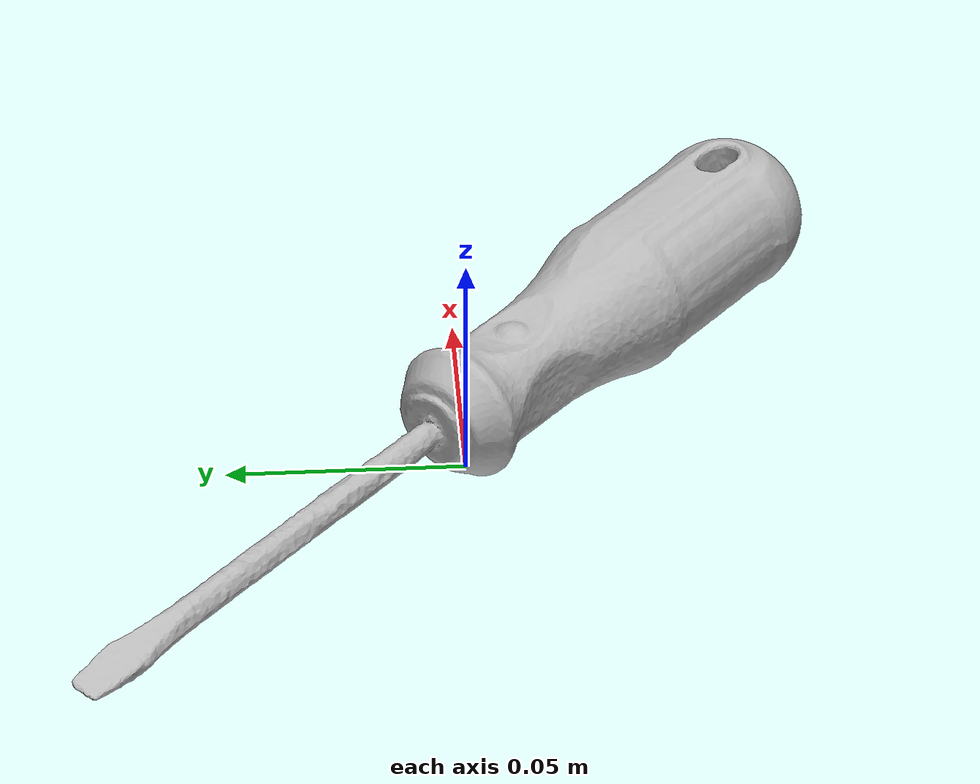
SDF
<?xml version="1.0" ?>
<sdf version='1.8'>
  <model name='ycb_044_flat_screwdriver'>
    <link name='body'>
      <inertial>
        <mass>0.0984</mass>
        <pose>0.0355483513 -0.0334075606 0.0164328217 0 0 0</pose>
        <inertia>
          <ixx>7.07771623195e-05</ixx>
          <ixy>6.18555936747e-05</ixy>
          <ixz>-3.4193858639e-06</ixz>
          <iyy>7.53574424005e-05</iyy>
          <iyz>3.3082300637e-06</iyz>
          <izz>0.000134805756702</izz>
        </inertia>
      </inertial>
      <visual name='ycb_044_flat_screwdriver_visual'>
        <pose>0.01232 -0.010702 0.000253 0 0 0</pose>
        <geometry>
          <mesh>
            <uri>model://ycb_044_flat_screwdriver/meshes/textured.dae</uri>
          </mesh>
        </geometry>
      </visual>
      <collision name='ycb_044_flat_screwdriver_collision'>
        <pose>0.01232 -0.010702 0.000253 0 0 0</pose>
        <geometry>
          <mesh>
            <uri>model://ycb_044_flat_screwdriver/meshes/nontextured.stl</uri>
          </mesh>
        </geometry>
        <max_contacts>10</max_contacts>
        <surface>
          <contact>
            <ode>
              <kp>1e15</kp>
              <kd>1e13</kd>
            </ode>
          </contact>
        </surface>
      </collision>
    </link>
  </model>
</sdf>
